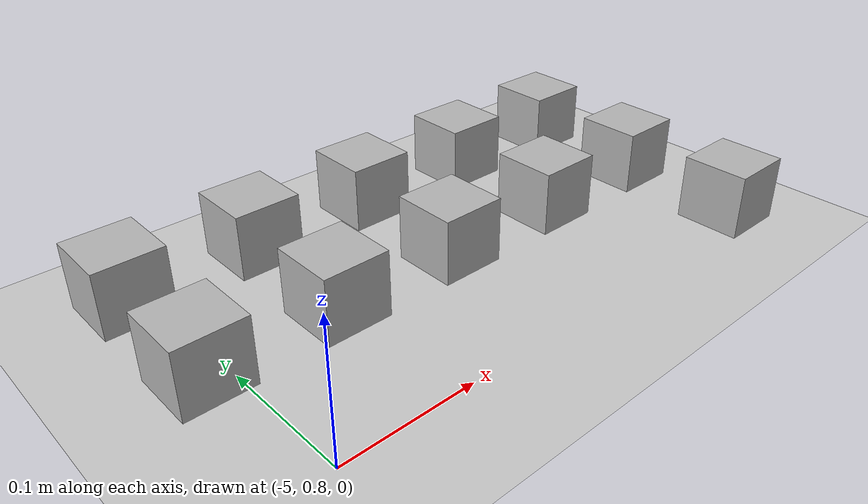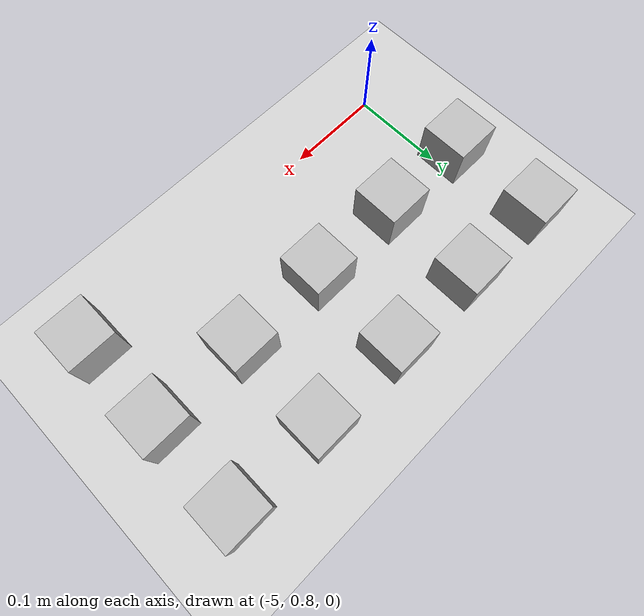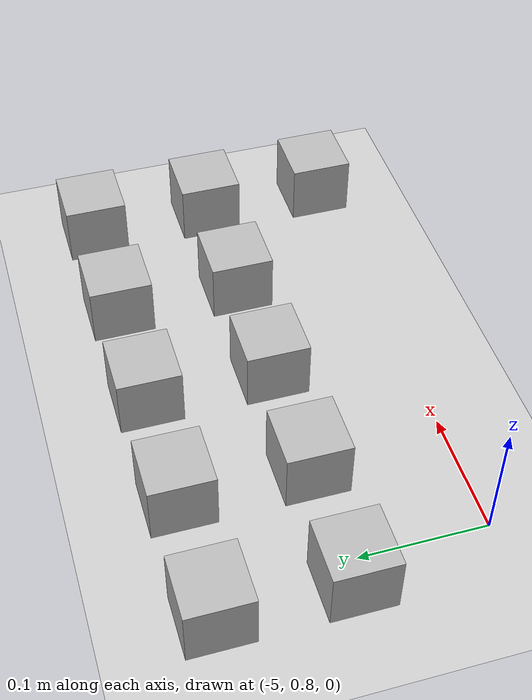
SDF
<sdf version="1.4">
 <world name="default">
  <model name="ground_plane">
   <static>1</static>
   <link name="link">
    <collision name="collision">
     <geometry><plane><normal>0 0 1</normal><size>100 100</size></plane></geometry>
     <surface><friction><ode><mu>100</mu><mu2>50</mu2></ode></friction></surface>
    </collision>
    <visual name="visual">
     <cast_shadows>0</cast_shadows>
     <geometry><plane><normal>0 0 1</normal><size>100 100</size></plane></geometry>
     <material>
      <script><uri>file://media/materials/scripts/gazebo.material</uri><name>Gazebo/Grey</name></script>
     </material>
    </visual>
    <velocity_decay><linear>0</linear><angular>0</angular></velocity_decay>
   </link>
  </model>
  <model name="at28">
   <static>0</static>
   <link name="link">
    <inertial>
     <mass>0.01</mass>
     <inertia><ixx>4e-05</ixx><ixy>0</ixy><ixz>0</ixz><iyy>4e-05</iyy><iyz>0</iyz><izz>4e-05</izz></inertia>
    </inertial>
    <visual name="visual">
     <geometry><box><size>0.05 0.05 0.05</size></box></geometry>
     <material>
      <script>
       <uri>model://at0/materials/scripts</uri>
       <uri>model://at0/materials/textures</uri>
       <name>at0/Diffuse</name>
      </script>
     </material>
    </visual>
    <collision name="collision">
     <geometry><box><size>0.05 0.05 0.05</size></box></geometry>
     <surface><friction><ode><mu>0.8</mu><mu2>0.7</mu2></ode></friction></surface>
    </collision>
    <velocity_decay><linear>0</linear><angular>0</angular></velocity_decay>
   </link>
   <pose>-4.61833 0.809652 0.025 0 -0 0</pose>
  </model>
  <model name="at32">
   <static>0</static>
   <link name="link">
    <inertial>
     <mass>0.01</mass>
     <inertia><ixx>4e-05</ixx><ixy>0</ixy><ixz>0</ixz><iyy>4e-05</iyy><iyz>0</iyz><izz>4e-05</izz></inertia>
    </inertial>
    <visual name="visual">
     <geometry><box><size>0.05 0.05 0.05</size></box></geometry>
     <material>
      <script>
       <uri>model://at0/materials/scripts</uri>
       <uri>model://at0/materials/textures</uri>
       <name>at0/Diffuse</name>
      </script>
     </material>
    </visual>
    <collision name="collision">
     <geometry><box><size>0.05 0.05 0.05</size></box></geometry>
     <surface><friction><ode><mu>0.8</mu><mu2>0.7</mu2></ode></friction></surface>
    </collision>
    <velocity_decay><linear>0</linear><angular>0</angular></velocity_decay>
   </link>
   <pose>-5.01833 0.909652 0.025 0 -0 0</pose>
  </model>
  <model name="at33">
   <static>0</static>
   <link name="link">
    <inertial>
     <mass>0.01</mass>
     <inertia><ixx>4e-05</ixx><ixy>0</ixy><ixz>0</ixz><iyy>4e-05</iyy><iyz>0</iyz><izz>4e-05</izz></inertia>
    </inertial>
    <visual name="visual">
     <geometry><box><size>0.05 0.05 0.05</size></box></geometry>
     <material>
      <script>
       <uri>model://at0/materials/scripts</uri>
       <uri>model://at0/materials/textures</uri>
       <name>at0/Diffuse</name>
      </script>
     </material>
    </visual>
    <collision name="collision">
     <geometry><box><size>0.05 0.05 0.05</size></box></geometry>
     <surface><friction><ode><mu>0.8</mu><mu2>0.7</mu2></ode></friction></surface>
    </collision>
    <velocity_decay><linear>0</linear><angular>0</angular></velocity_decay>
   </link>
   <pose>-4.91833 0.909652 0.025 0 -0 0</pose>
  </model>
  <model name="at34">
   <static>0</static>
   <link name="link">
    <inertial>
     <mass>0.01</mass>
     <inertia><ixx>4e-05</ixx><ixy>0</ixy><ixz>0</ixz><iyy>4e-05</iyy><iyz>0</iyz><izz>4e-05</izz></inertia>
    </inertial>
    <visual name="visual">
     <geometry><box><size>0.05 0.05 0.05</size></box></geometry>
     <material>
      <script>
       <uri>model://at0/materials/scripts</uri>
       <uri>model://at0/materials/textures</uri>
       <name>at0/Diffuse</name>
      </script>
     </material>
    </visual>
    <collision name="collision">
     <geometry><box><size>0.05 0.05 0.05</size></box></geometry>
     <surface><friction><ode><mu>0.8</mu><mu2>0.7</mu2></ode></friction></surface>
    </collision>
    <velocity_decay><linear>0</linear><angular>0</angular></velocity_decay>
   </link>
   <pose>-4.81833 0.909652 0.025 0 -0 0</pose>
  </model>
  <model name="at35">
   <static>0</static>
   <link name="link">
    <inertial>
     <mass>0.01</mass>
     <inertia><ixx>4e-05</ixx><ixy>0</ixy><ixz>0</ixz><iyy>4e-05</iyy><iyz>0</iyz><izz>4e-05</izz></inertia>
    </inertial>
    <visual name="visual">
     <geometry><box><size>0.05 0.05 0.05</size></box></geometry>
     <material>
      <script>
       <uri>model://at0/materials/scripts</uri>
       <uri>model://at0/materials/textures</uri>
       <name>at0/Diffuse</name>
      </script>
     </material>
    </visual>
    <collision name="collision">
     <geometry><box><size>0.05 0.05 0.05</size></box></geometry>
     <surface><friction><ode><mu>0.8</mu><mu2>0.7</mu2></ode></friction></surface>
    </collision>
    <velocity_decay><linear>0</linear><angular>0</angular></velocity_decay>
   </link>
   <pose>-4.71833 0.909652 0.025 0 -0 0</pose>
  </model>
  <model name="at36">
   <static>0</static>
   <link name="link">
    <inertial>
     <mass>0.01</mass>
     <inertia><ixx>4e-05</ixx><ixy>0</ixy><ixz>0</ixz><iyy>4e-05</iyy><iyz>0</iyz><izz>4e-05</izz></inertia>
    </inertial>
    <visual name="visual">
     <geometry><box><size>0.05 0.05 0.05</size></box></geometry>
     <material>
      <script>
       <uri>model://at0/materials/scripts</uri>
       <uri>model://at0/materials/textures</uri>
       <name>at0/Diffuse</name>
      </script>
     </material>
    </visual>
    <collision name="collision">
     <geometry><box><size>0.05 0.05 0.05</size></box></geometry>
     <surface><friction><ode><mu>0.8</mu><mu2>0.7</mu2></ode></friction></surface>
    </collision>
    <velocity_decay><linear>0</linear><angular>0</angular></velocity_decay>
   </link>
   <pose>-4.61833 0.909652 0.025 0 -0 0</pose>
  </model>
  <model name="at40">
   <static>0</static>
   <link name="link">
    <inertial>
     <mass>0.01</mass>
     <inertia><ixx>4e-05</ixx><ixy>0</ixy><ixz>0</ixz><iyy>4e-05</iyy><iyz>0</iyz><izz>4e-05</izz></inertia>
    </inertial>
    <visual name="visual">
     <geometry><box><size>0.05 0.05 0.05</size></box></geometry>
     <material>
      <script>
       <uri>model://at0/materials/scripts</uri>
       <uri>model://at0/materials/textures</uri>
       <name>at0/Diffuse</name>
      </script>
     </material>
    </visual>
    <collision name="collision">
     <geometry><box><size>0.05 0.05 0.05</size></box></geometry>
     <surface><friction><ode><mu>0.8</mu><mu2>0.7</mu2></ode></friction></surface>
    </collision>
    <velocity_decay><linear>0</linear><angular>0</angular></velocity_decay>
   </link>
   <pose>-5.01833 1.00965 0.025 0 -0 0</pose>
  </model>
  <model name="at41">
   <static>0</static>
   <link name="link">
    <inertial>
     <mass>0.01</mass>
     <inertia><ixx>4e-05</ixx><ixy>0</ixy><ixz>0</ixz><iyy>4e-05</iyy><iyz>0</iyz><izz>4e-05</izz></inertia>
    </inertial>
    <visual name="visual">
     <geometry><box><size>0.05 0.05 0.05</size></box></geometry>
     <material>
      <script>
       <uri>model://at0/materials/scripts</uri>
       <uri>model://at0/materials/textures</uri>
       <name>at0/Diffuse</name>
      </script>
     </material>
    </visual>
    <collision name="collision">
     <geometry><box><size>0.05 0.05 0.05</size></box></geometry>
     <surface><friction><ode><mu>0.8</mu><mu2>0.7</mu2></ode></friction></surface>
    </collision>
    <velocity_decay><linear>0</linear><angular>0</angular></velocity_decay>
   </link>
   <pose>-4.91833 1.00965 0.025 0 -0 0</pose>
  </model>
  <model name="at42">
   <static>0</static>
   <link name="link">
    <inertial>
     <mass>0.01</mass>
     <inertia><ixx>4e-05</ixx><ixy>0</ixy><ixz>0</ixz><iyy>4e-05</iyy><iyz>0</iyz><izz>4e-05</izz></inertia>
    </inertial>
    <visual name="visual">
     <geometry><box><size>0.05 0.05 0.05</size></box></geometry>
     <material>
      <script>
       <uri>model://at0/materials/scripts</uri>
       <uri>model://at0/materials/textures</uri>
       <name>at0/Diffuse</name>
      </script>
     </material>
    </visual>
    <collision name="collision">
     <geometry><box><size>0.05 0.05 0.05</size></box></geometry>
     <surface><friction><ode><mu>0.8</mu><mu2>0.7</mu2></ode></friction></surface>
    </collision>
    <velocity_decay><linear>0</linear><angular>0</angular></velocity_decay>
   </link>
   <pose>-4.81833 1.00965 0.025 0 -0 0</pose>
  </model>
  <model name="at43">
   <static>0</static>
   <link name="link">
    <inertial>
     <mass>0.01</mass>
     <inertia><ixx>4e-05</ixx><ixy>0</ixy><ixz>0</ixz><iyy>4e-05</iyy><iyz>0</iyz><izz>4e-05</izz></inertia>
    </inertial>
    <visual name="visual">
     <geometry><box><size>0.05 0.05 0.05</size></box></geometry>
     <material>
      <script>
       <uri>model://at0/materials/scripts</uri>
       <uri>model://at0/materials/textures</uri>
       <name>at0/Diffuse</name>
      </script>
     </material>
    </visual>
    <collision name="collision">
     <geometry><box><size>0.05 0.05 0.05</size></box></geometry>
     <surface><friction><ode><mu>0.8</mu><mu2>0.7</mu2></ode></friction></surface>
    </collision>
    <velocity_decay><linear>0</linear><angular>0</angular></velocity_decay>
   </link>
   <pose>-4.71833 1.00965 0.025 0 -0 0</pose>
  </model>
  <model name="at44">
   <static>0</static>
   <link name="link">
    <inertial>
     <mass>0.01</mass>
     <inertia><ixx>4e-05</ixx><ixy>0</ixy><ixz>0</ixz><iyy>4e-05</iyy><iyz>0</iyz><izz>4e-05</izz></inertia>
    </inertial>
    <visual name="visual">
     <geometry><box><size>0.05 0.05 0.05</size></box></geometry>
     <material>
      <script>
       <uri>model://at0/materials/scripts</uri>
       <uri>model://at0/materials/textures</uri>
       <name>at0/Diffuse</name>
      </script>
     </material>
    </visual>
    <collision name="collision">
     <geometry><box><size>0.05 0.05 0.05</size></box></geometry>
     <surface><friction><ode><mu>0.8</mu><mu2>0.7</mu2></ode></friction></surface>
    </collision>
    <velocity_decay><linear>0</linear><angular>0</angular></velocity_decay>
   </link>
   <pose>-4.61833 1.00965 0.025 0 -0 0</pose>
  </model>
 </world>
</sdf>
